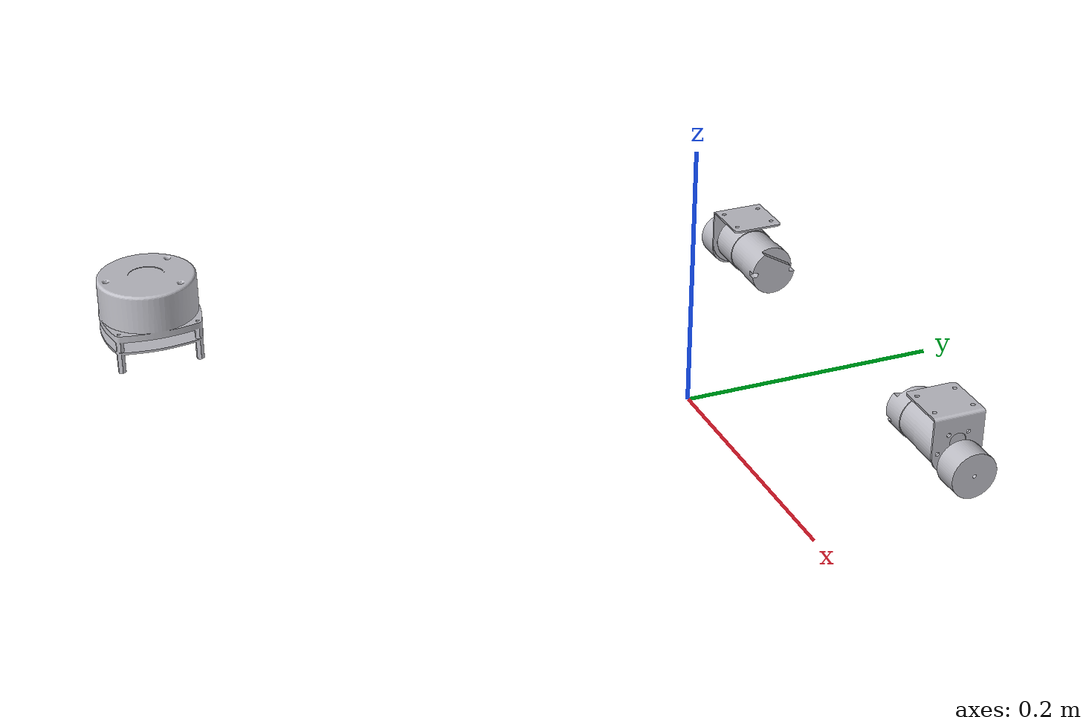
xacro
<?xml version="1.0" ?>
<robot name="final" xmlns:xacro="http://www.ros.org/wiki/xacro">

<xacro:include filename="$(find clab_base_oriented_urdf)/urdf/materials.xacro" />
<xacro:include filename="$(find clab_base_oriented_urdf)/urdf/final.trans" />
<xacro:include filename="$(find clab_base_oriented_urdf)/urdf/final.gazebo" />
<link name="base_link"/>

<link name="dummy">
  <inertial>
    <origin xyz="0.0002740847451858386 0.00104137153651487 0.05918337575258547" rpy="0 0 0"/>
    <mass value="5.192562780150939"/>
    <inertia ixx="0.052115" iyy="0.056169" izz="0.107983" ixy="-3.4e-05" iyz="-5e-06" ixz="-0.000645"/>
  </inertial>
  <visual>
    <origin xyz="0 0 0" rpy="0 0 0"/>
    <geometry>
      <mesh filename="package://clab_base_oriented_urdf/meshes/base_link.stl" scale="0.001 0.001 0.001"/>
    </geometry>
    <material name="silver"/>
  </visual>
  <collision>
    <origin xyz="0 0 0" rpy="0 0 0"/>
    <geometry>
      <mesh filename="package://clab_base_oriented_urdf/meshes/base_link.stl" scale="0.001 0.001 0.001"/>
    </geometry>
  </collision>
</link>

<link name="right_bracket_1">
  <inertial>
    <origin xyz="0.12150632658655187 -0.16391862005130825 -0.06787993255011897" rpy="0 0 0"/>
    <mass value="0.0339205638991619"/>
    <inertia ixx="1.2e-05" iyy="1.1e-05" izz="1.1e-05" ixy="0.0" iyz="-3e-06" ixz="0.0"/>
  </inertial>
  <visual>
    <origin xyz="-0.0 -0.0 -0.115349" rpy="0 0 0"/>
    <geometry>
      <mesh filename="package://clab_base_oriented_urdf/meshes/right_bracket_1.stl" scale="0.001 0.001 0.001"/>
    </geometry>
    <material name="silver"/>
  </visual>
  <collision>
    <origin xyz="-0.0 -0.0 -0.115349" rpy="0 0 0"/>
    <geometry>
      <mesh filename="package://clab_base_oriented_urdf/meshes/right_bracket_1.stl" scale="0.001 0.001 0.001"/>
    </geometry>
  </collision>
</link>

<link name="right_motor_1">
  <inertial>
    <origin xyz="0.007479401245053613 0.031041669068612415 0.012935476165405104" rpy="0 0 0"/>
    <mass value="0.06268551144302958"/>
    <inertia ixx="2.7e-05" iyy="1e-05" izz="2.7e-05" ixy="0.0" iyz="0.0" ixz="0.0"/>
  </inertial>
  <visual>
    <origin xyz="-0.113756 0.174038 -0.016251" rpy="0 0 0"/>
    <geometry>
      <mesh filename="package://clab_base_oriented_urdf/meshes/right_motor_1.stl" scale="0.001 0.001 0.001"/>
    </geometry>
    <material name="silver"/>
  </visual>
  <collision>
    <origin xyz="-0.113756 0.174038 -0.016251" rpy="0 0 0"/>
    <geometry>
      <mesh filename="package://clab_base_oriented_urdf/meshes/right_motor_1.stl" scale="0.001 0.001 0.001"/>
    </geometry>
  </collision>
</link>

<link name="right_bracket_Mirror__1">
  <inertial>
    <origin xyz="0.2995063265865481 0.34110497710292775 -0.06787993255011932" rpy="0 0 0"/>
    <mass value="0.033920563899161926"/>
    <inertia ixx="1.2e-05" iyy="1.1e-05" izz="1.1e-05" ixy="-0.0" iyz="3e-06" ixz="0.0"/>
  </inertial>
  <visual>
    <origin xyz="0.1775 0.1775 -0.115349" rpy="0 0 0"/>
    <geometry>
      <mesh filename="package://clab_base_oriented_urdf/meshes/right_bracket_Mirror__1.stl" scale="0.001 0.001 0.001"/>
    </geometry>
    <material name="silver"/>
  </visual>
  <collision>
    <origin xyz="0.1775 0.1775 -0.115349" rpy="0 0 0"/>
    <geometry>
      <mesh filename="package://clab_base_oriented_urdf/meshes/right_bracket_Mirror__1.stl" scale="0.001 0.001 0.001"/>
    </geometry>
  </collision>
</link>

<link name="right_motor_Mirror__1">
  <inertial>
    <origin xyz="-0.014696633977940854 0.10496468798300612 0.17352126800580758" rpy="0 0 0"/>
    <mass value="0.06268551144302958"/>
    <inertia ixx="2.7e-05" iyy="1e-05" izz="2.7e-05" ixy="-0.0" iyz="-0.0" ixz="0.0"/>
  </inertial>
  <visual>
    <origin xyz="-0.138681 -0.037718 0.144049" rpy="0 0 0"/>
    <geometry>
      <mesh filename="package://clab_base_oriented_urdf/meshes/right_motor_Mirror__1.stl" scale="0.001 0.001 0.001"/>
    </geometry>
    <material name="silver"/>
  </visual>
  <collision>
    <origin xyz="-0.138681 -0.037718 0.144049" rpy="0 0 0"/>
    <geometry>
      <mesh filename="package://clab_base_oriented_urdf/meshes/right_motor_Mirror__1.stl" scale="0.001 0.001 0.001"/>
    </geometry>
  </collision>
</link>

<link name="wheel_v2_1">
  <inertial>
    <origin xyz="-1.5648361721687376e-07 -0.009999821474193538 4.5719482423545177e-07" rpy="0 0 0"/>
    <mass value="0.14994193417053372"/>
    <inertia ixx="1.7e-05" iyy="2.3e-05" izz="1.7e-05" ixy="-0.0" iyz="0.0" ixz="0.0"/>
  </inertial>
  <visual>
    <origin xyz="-0.12133 0.180038 -0.02257" rpy="0 0 0"/>
    <geometry>
      <mesh filename="package://clab_base_oriented_urdf/meshes/wheel_v2_1.stl" scale="0.001 0.001 0.001"/>
    </geometry>
    <material name="silver"/>
  </visual>
  <collision>
    <origin xyz="-0.12133 0.180038 -0.02257" rpy="0 0 0"/>
    <geometry>
      <mesh filename="package://clab_base_oriented_urdf/meshes/wheel_v2_1.stl" scale="0.001 0.001 0.001"/>
    </geometry>
  </collision>
</link>

<link name="wheel_v2_Mirror__1">
  <inertial>
    <origin xyz="3.009709530071847e-07 0.010000178525811948 -5.7359007609586454e-08" rpy="0 0 0"/>
    <mass value="0.14994193417053372"/>
    <inertia ixx="1.7e-05" iyy="2.3e-05" izz="1.7e-05" ixy="-0.0" iyz="-0.0" ixz="-0.0"/>
  </inertial>
  <visual>
    <origin xyz="-0.12181 -0.179724 -0.023223" rpy="0 0 0"/>
    <geometry>
      <mesh filename="package://clab_base_oriented_urdf/meshes/wheel_v2_Mirror__1.stl" scale="0.001 0.001 0.001"/>
    </geometry>
    <material name="silver"/>
  </visual>
  <collision>
    <origin xyz="-0.12181 -0.179724 -0.023223" rpy="0 0 0"/>
    <geometry>
      <mesh filename="package://clab_base_oriented_urdf/meshes/wheel_v2_Mirror__1.stl" scale="0.001 0.001 0.001"/>
    </geometry>
  </collision>
</link>

<link name="lidar_v1_1">
  <inertial>
    <origin xyz="0.2962746537397236 0.19400140168829016 -0.02241210760548261" rpy="0 0 0"/>
    <mass value="1.3389387535639667"/>
    <inertia ixx="0.000619" iyy="0.000967" izz="0.001105" ixy="-1e-06" iyz="-3e-06" ixz="0.000159"/>
  </inertial>
  <visual>
    <origin xyz="0.1775 0.1775 -0.120349" rpy="0 0 0"/>
    <geometry>
      <mesh filename="package://clab_base_oriented_urdf/meshes/lidar_v1_1.stl" scale="0.001 0.001 0.001"/>
    </geometry>
    <material name="silver"/>
  </visual>
  <collision>
    <origin xyz="0.1775 0.1775 -0.120349" rpy="0 0 0"/>
    <geometry>
      <mesh filename="package://clab_base_oriented_urdf/meshes/lidar_v1_1.stl" scale="0.001 0.001 0.001"/>
    </geometry>
  </collision>
</link>

<joint name="Rigid 2" type="fixed">
  <origin xyz="0.0 0.0 0.115349" rpy="0 0 0"/>
  <parent link="dummy"/>
  <child link="right_bracket_1"/>
</joint>

<joint name="Rigid 4" type="fixed">
  <origin xyz="0.113756 -0.174038 -0.099098" rpy="0 0 0"/>
  <parent link="right_bracket_1"/>
  <child link="right_motor_1"/>
</joint>

<joint name="Rigid 10" type="fixed">
  <origin xyz="-0.1775 -0.1775 0.115349" rpy="0 0 0"/>
  <parent link="dummy"/>
  <child link="right_bracket_Mirror__1"/>
</joint>

<joint name="Rigid 11" type="fixed">
  <origin xyz="0.316181 0.215218 -0.259398" rpy="0 0 0"/>
  <parent link="right_bracket_Mirror__1"/>
  <child link="right_motor_Mirror__1"/>
</joint>

<joint name="Revolute 13" type="continuous">
  <origin xyz="0.007574 -0.006 0.006319" rpy="0 0 0"/>
  <parent link="right_motor_1"/>
  <child link="wheel_v2_1"/>
  <axis xyz="-0.0 1.0 -0.0"/>
</joint>

<joint name="Revolute 14" type="continuous">
  <origin xyz="-0.016871 0.142006 0.167272" rpy="0 0 0"/>
  <parent link="right_motor_Mirror__1"/>
  <child link="wheel_v2_Mirror__1"/>
  <axis xyz="-0.0 1.0 -0.0"/>
</joint>

<joint name="Rigid 15" type="fixed">
  <origin xyz="-0.1775 -0.1775 0.120349" rpy="0 0 1.57"/>
  <parent link="dummy"/>
  <child link="lidar_v1_1"/>
  <axis xyz="0 0 1"/> <!-- Same axis orientation for both joints -->
</joint>

<joint name="base_joint" type="fixed">
  <origin xyz="0 0 0" rpy="0 0 1.57"/>
  <parent link="base_link"/>
  <child link="dummy"/>
  <axis xyz="0 0 1"/> <!-- Same axis orientation for both joints -->
</joint>

</robot>

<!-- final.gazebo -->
<robot name="final" xmlns:xacro="http://www.ros.org/wiki/xacro" >

<xacro:property name="body_color" value="Gazebo/Silver" />

<gazebo>
  <plugin name="control" filename="libgazebo_ros_control.so"/>
</gazebo>
<gazebo reference="base_link">
  <material>${body_color}</material>
  <mu1>0.2</mu1>
  <mu2>0.2</mu2>
  <selfCollide>true</selfCollide>
  <gravity>true</gravity>
</gazebo>

<gazebo reference="right_bracket_1">
  <material>${body_color}</material>
  <mu1>0.2</mu1>
  <mu2>0.2</mu2>
  <selfCollide>true</selfCollide>
</gazebo>

<gazebo reference="right_motor_1">
  <material>${body_color}</material>
  <mu1>0.2</mu1>
  <mu2>0.2</mu2>
  <selfCollide>true</selfCollide>
</gazebo>

<gazebo reference="right_bracket_Mirror__1">
  <material>${body_color}</material>
  <mu1>0.2</mu1>
  <mu2>0.2</mu2>
  <selfCollide>true</selfCollide>
</gazebo>

<gazebo reference="right_motor_Mirror__1">
  <material>${body_color}</material>
  <mu1>0.2</mu1>
  <mu2>0.2</mu2>
  <selfCollide>true</selfCollide>
</gazebo>

<gazebo reference="wheel_v2_1">
  <material>${body_color}</material>
  <mu1>0.2</mu1>
  <mu2>0.2</mu2>
  <selfCollide>true</selfCollide>
</gazebo>

<gazebo reference="wheel_v2_Mirror__1">
  <material>${body_color}</material>
  <mu1>0.2</mu1>
  <mu2>0.2</mu2>
  <selfCollide>true</selfCollide>
</gazebo>

<gazebo reference="lidar_v1_1">
  <material>${body_color}</material>
  <mu1>0.2</mu1>
  <mu2>0.2</mu2>
  <selfCollide>true</selfCollide>
</gazebo>
	<gazebo>
	<plugin name="differential_drive_controller" filename="libgazebo_ros_diff_drive.so">

		<!-- Plugin update rate in Hz -->
		<updateRate>100</updateRate>

		<!-- Name of left joint, defaults to `left_joint` -->
		<leftJoint>Revolute 13</leftJoint>

		<!-- Name of right joint, defaults to `right_joint` -->
		<rightJoint>Revolute 14</rightJoint>

		<!-- The distance from the center of one wheel to the other, in meters, defaults to 0.34 m -->
		<wheelSeparation>0.01</wheelSeparation>

		<!-- Diameter of the wheels, in meters, defaults to 0.15 m -->
		<wheelDiameter>0.05</wheelDiameter>

		<!-- Wheel acceleration, in rad/s^2, defaults to 0.0 rad/s^2 -->
		<wheelAcceleration>1.0</wheelAcceleration>

		<!-- Maximum torque which the wheels can produce, in Nm, defaults to 5 Nm -->
		<wheelTorque>50</wheelTorque>

		<!-- Topic to receive geometry_msgs/Twist message commands, defaults to `cmd_vel` -->
		<commandTopic>cmd_vel</commandTopic>

		<!-- Topic to publish nav_msgs/Odometry messages, defaults to `odom` -->
		<odometryTopic>odom</odometryTopic>

		<!-- Odometry frame, defaults to `odom` -->
		<odometryFrame>odom</odometryFrame>

		<!-- Robot frame to calculate odometry from, defaults to `base_footprint` -->
		<robotBaseFrame>base_link</robotBaseFrame>

		<!-- Odometry source, 0 for ENCODER, 1 for WORLD, defaults to WORLD -->
		<odometrySource>1</odometrySource>

		<!-- Set to true to publish transforms for the wheel links, defaults to false -->
		<publishWheelTF>false</publishWheelTF>

		<!-- Set to true to publish transforms for the odometry, defaults to true -->
		<publishOdom>true</publishOdom>

		<!-- Set to true to publish sensor_msgs/JointState on /joint_states for the wheel joints, defaults to false -->
		<publishWheelJointState>false</publishWheelJointState>

		<!-- Set to true to swap right and left wheels, defaults to true -->
		<legacyMode>false</legacyMode>
	</plugin>
	</gazebo>
	<!-- hokuyo -->
	<gazebo reference="lidar_v1_1">
		<sensor type="ray" name="head_hokuyo_sensor">
		<pose>0 0 0 0 0 0</pose>
		<visualize>true</visualize>
		<update_rate>40</update_rate>
		<ray>
			<scan>
			<horizontal>
				<samples>720</samples>
				<resolution>1</resolution>
				<min_angle>-1.570796</min_angle>
				<max_angle>1.570796</max_angle>
			</horizontal>
			</scan>
			<range>
			<min>0.10</min>
			<max>30.0</max>
			<resolution>0.01</resolution>
			</range>
			<noise>
			<type>gaussian</type>
			<mean>0.0</mean>
			<stddev>0.01</stddev>
			</noise>
		</ray>
		<plugin name="gazebo_ros_head_hokuyo_controller" filename="libgazebo_ros_laser.so">
			<topicName>/scan</topicName>
			<frameName>lidar_v1_1</frameName>
		</plugin>
		</sensor>
	</gazebo>

</robot>
